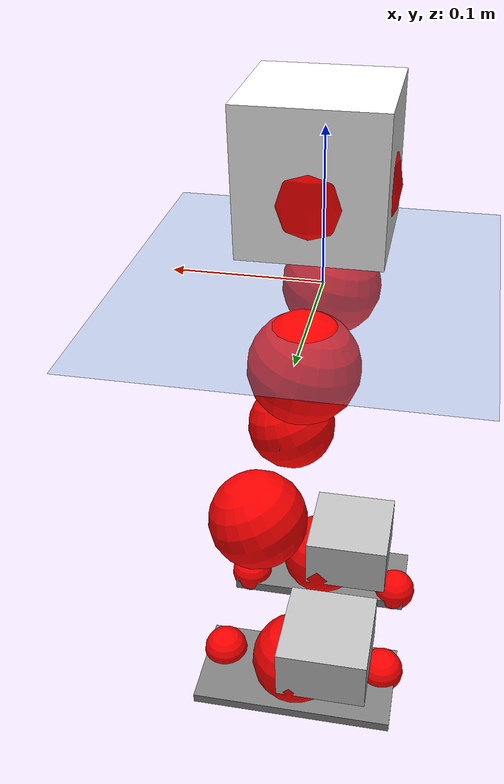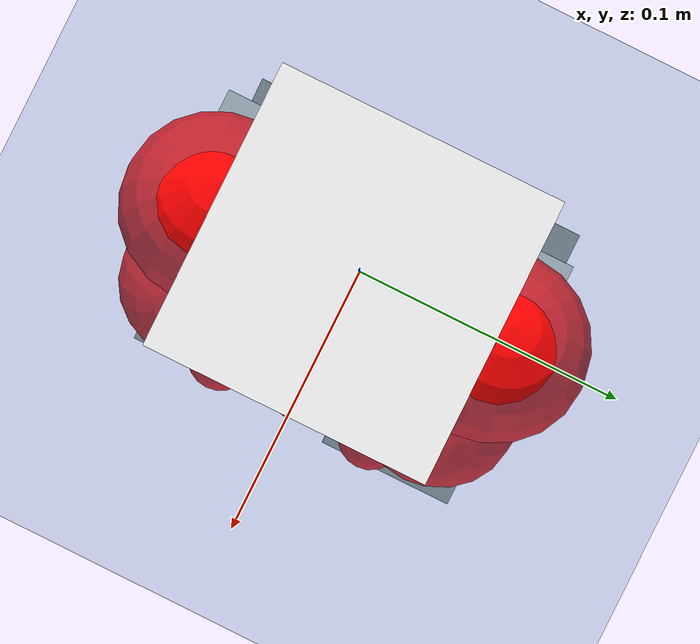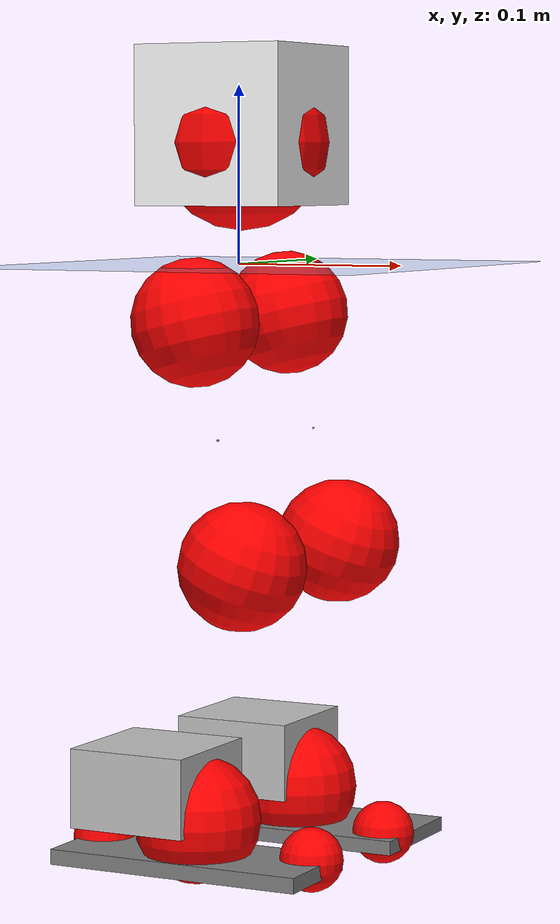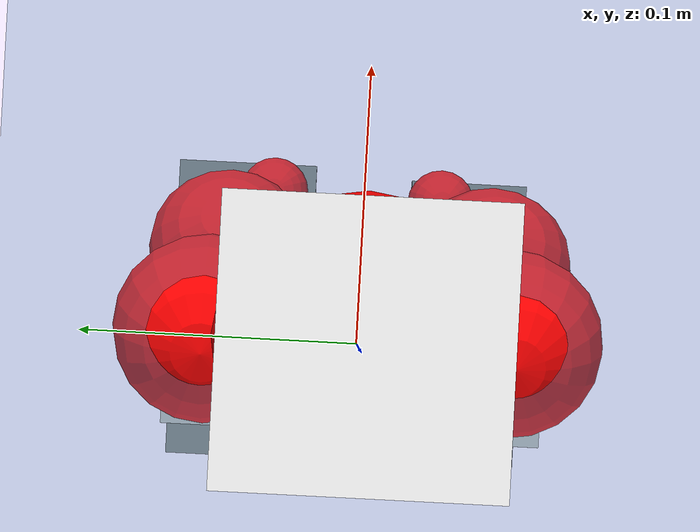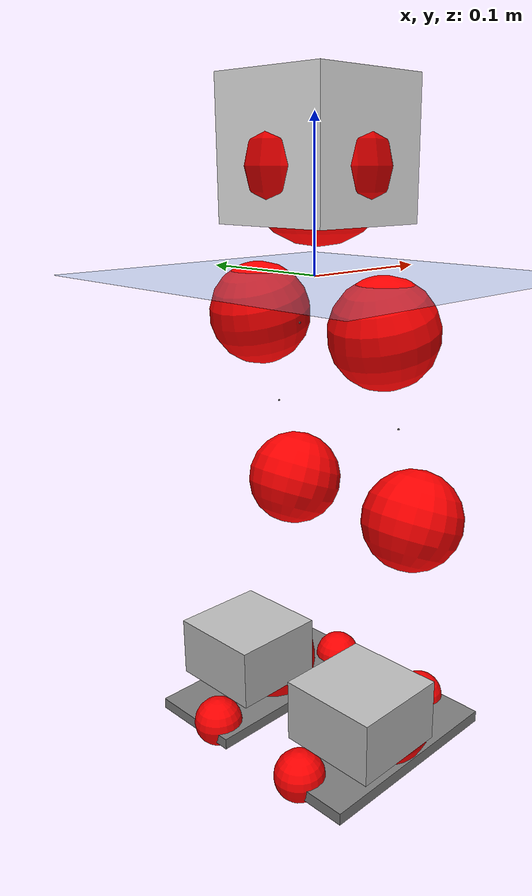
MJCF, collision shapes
<mujoco model="pi_12dof_release_v1">
  <compiler angle="radian" assetdir="assets" balanceinertia="true" inertiafromgeom="false"/>

  <option timestep="0.005" density="1.2" viscosity="2e-05"/>

  <size nkey="1"/>

  <visual>
    <quality shadowsize="8192"/>
    <map shadowclip="0.5"/>
  </visual>

  <default>
    <default class="/">
      <joint armature="0.01" damping="0.01" frictionloss="0.01"/>
      <geom contype="0" conaffinity="0" group="1" solref="-1000 -80"/>
      <site size="0.01 0.005 0.005" group="5"/>
      <general forcelimited="true" biastype="affine" gainprm="20" biasprm="0 -20 -0.5"/>
      <default class="foot">
        <geom size="0.0845 0.036 0.005" type="box" condim="6" group="4" priority="1" friction="0.9 0.2 0.2" solimp="0.015 1 0.005"/>
      </default>
      <default class="reward_collision_sphere">
        <geom group="5" rgba="1 0 0 1"/>
      </default>
    </default>
  </default>

  <asset>
    <texture type="skybox" colorspace="auto" name="//unnamed_texture_0" builtin="gradient" rgb1="0.95 0.95 0.95" rgb2="0.95 0.95 0.95" width="100" height="600"/>
    <texture type="2d" colorspace="auto" name="texplane" builtin="checker" rgb1="0.345 0.575 0.748" rgb2="0.345 0.575 0.748" markrgb="1 1 1" width="512" height="512"/>
    <material name="MatPlane" class="/" texture="texplane" texuniform="true" texrepeat="2 2" specular="0.9"/>
    <mesh name="baselink_1" class="/" file="baselink_1.STL"/>
    <mesh name="r_hip_pitch_link" class="/" file="r_hip_pitch_link.STL"/>
    <mesh name="r_hip_roll_link" class="/" file="r_hip_roll_link.STL"/>
    <mesh name="r_thigh_link" class="/" file="r_thigh_link.STL"/>
    <mesh name="r_calf_link" class="/" file="r_calf_link.STL"/>
    <mesh name="r_ankle_pitch_link" class="/" file="r_ankle_pitch_link.STL"/>
    <mesh name="r_ankle_roll_link" class="/" file="r_ankle_roll_link.STL"/>
    <mesh name="l_hip_pitch_link" class="/" file="l_hip_pitch_link.STL"/>
    <mesh name="l_hip_roll_link" class="/" file="l_hip_roll_link.STL"/>
    <mesh name="l_thigh_link" class="/" file="l_thigh_link.STL"/>
    <mesh name="l_calf_link" class="/" file="l_calf_link.STL"/>
    <mesh name="l_ankle_pitch_link" class="/" file="l_ankle_pitch_link.STL"/>
    <mesh name="l_ankle_roll_link" class="/" file="l_ankle_roll_link.STL"/>
  </asset>

  <worldbody>
    <geom name="floor" class="/" size="100 100 0.125" type="plane" group="0" material="MatPlane"/>
    <light name="toplight_shadow" class="/" pos="0 0 5" dir="0.0990148 0.0990148 -0.990148" type="directional" ambient="0.04 0.04 0.04" diffuse="0.55 0.55 0.55" specular="0.12 0.12 0.12"/>
    <light name="toplight_fill" class="/" pos="0 0 5" dir="0.0990148 0.0990148 -0.990148" type="directional" castshadow="false" ambient="0.04 0.04 0.04" diffuse="0.3 0.3 0.3" specular="0.08 0.08 0.08"/>
    <body name="trunk" pos="0.00255247 -0.000552265 0.00032452" quat="0.999999 0.000734224 -0.000111061 0.000919827">
      <inertial pos="-0.000281544 -0.00134314 0.0388" quat="0.695235 0.0090089 0.00695456 0.718692" mass="1.46866" diaginertia="0.0084278 0.00197281 0.00337001"/>
      <joint name="//unnamed_joint_0" type="free"/>
      <geom name="//unnamed_geom_1" class="/" type="mesh" density="0" rgba="1 1 1 1" mesh="baselink_1"/>
      <geom name="//unnamed_geom_2" class="/" size="0.0445748 0.0445748 0.0445748" pos="0 0 0.0770077" type="box" rgba="1 1 1 1"/>
      <geom name="//unnamed_geom_3" class="reward_collision_sphere" size="0.0490323" pos="0 0 0.0673817"/>
      <site name="imu" class="/" pos="-0.00259137 0.000741215 0.0113233" size="0.00891497"/>
      <camera name="track" class="/" pos="0 -1.47879 0" quat="0.707107 0.707107 0 0" mode="trackcom"/>
      <camera name="ego_camera" class="/" pos="0.0729374 0 0.173267" quat="-0.5 -0.5 0.5 0.5"/>
      <body name="r_hip_pitch_link" pos="-0.000180221 -0.0158736 -0.03179" quat="0.992162 -0.000286186 -0.124957 4.64861e-06">
        <inertial pos="0.000133879 -0.0430989 -0.000206297" quat="-0.02036 0.705854 -0.0269237 0.707553" mass="0.260556" diaginertia="9.64451e-05 2.14408e-05 6.85321e-05"/>
        <joint name="r_hip_pitch_joint" class="/" pos="0 0 0" axis="0.00314358 -0.999985 0.00459388" range="-1.74584 1.24723" armature="0.0092933" damping="0.0223285" frictionloss="0.00953676"/>
        <geom name="//unnamed_geom_4" class="/" type="mesh" density="0" rgba="0.75294 0.75294 0.75294 1" mesh="r_hip_pitch_link"/>
        <geom name="//unnamed_geom_5" class="/" size="0.000445748 0.000445748 0.000445748" type="box" rgba="0.75294 0.75294 0.75294 1"/>
        <body name="r_hip_roll_link" pos="0.000345584 -0.0408675 0.000772337" quat="1 -7.58005e-05 -0.000531023 -0.000757126">
          <inertial pos="0.000321011 -0.00106521 -0.0614067" quat="0.705866 -0.0795984 -0.0825071 0.699006" mass="0.268865" diaginertia="0.000285147 6.08548e-05 0.00010773"/>
          <joint name="r_hip_roll_joint" class="/" pos="0 0 0" axis="-0.999975 0.00705471 0.000967053" stiffness="0.00222585" range="-0.101114 0.471404" armature="0.00923503" damping="0" frictionloss="0.00976483"/>
          <geom name="//unnamed_geom_6" class="/" type="mesh" density="0" rgba="0.75294 0.75294 0.75294 1" mesh="r_hip_roll_link"/>
          <geom name="//unnamed_geom_7" class="/" size="0.000445748 0.000445748 0.000445748" type="box" rgba="0.75294 0.75294 0.75294 1"/>
          <geom name="//unnamed_geom_8" class="reward_collision_sphere" size="0.0356599"/>
          <body name="r_thigh_link" pos="-0.00160076 -0.00163314 -0.0657679" quat="1 0.00014515 -2.91378e-05 -0.000250155">
            <inertial pos="-0.00143302 0.00109162 -0.0446861" quat="0.738887 0.673822 0.00255832 0.0018371" mass="0.0797838" diaginertia="0.000111557 2.18006e-05 4.87604e-05"/>
            <joint name="r_thigh_joint" class="/" pos="0 0 0" axis="0.00235794 0.00131541 -0.999996" range="-0.335346 0.601878" armature="0.00875916" damping="0.0003556" frictionloss="0.00777628"/>
            <geom name="//unnamed_geom_9" class="/" type="mesh" density="0" rgba="0.75294 0.75294 0.75294 1" mesh="r_thigh_link"/>
            <geom name="//unnamed_geom_10" class="/" size="0.000445748 0.000445748 0.000445748" type="box" rgba="0.75294 0.75294 0.75294 1"/>
            <body name="r_calf_link" pos="-0.00156533 -0.00197096 -0.0701915" quat="0.947452 -0.000502049 0.319897 -3.60341e-05">
              <inertial pos="-0.000630303 -0.00281323 -0.0667981" quat="0.999905 -0.0111212 -0.0048328 0.0066218" mass="0.571177" diaginertia="0.00299717 0.000770383 0.000142325"/>
              <joint name="r_calf_joint" class="/" pos="0 0 0" axis="-0.00224762 -0.999974 -0.00682489" range="-1.60035 0.641677" armature="0.00903408" damping="0.00587683" frictionloss="0.00958817"/>
              <geom name="//unnamed_geom_11" class="/" type="mesh" density="0" rgba="0.75294 0.75294 0.75294 1" mesh="r_calf_link"/>
              <geom name="//unnamed_geom_12" class="/" size="0.000445748 0.000445748 0.000445748" type="box" rgba="0.75294 0.75294 0.75294 1"/>
              <geom name="//unnamed_geom_13" class="reward_collision_sphere" size="0.0356599"/>
              <body name="r_ankle_pitch_link" pos="-0.000260719 -0.00189541 -0.135097" quat="0.980068 0.000169681 -0.198661 0.000119762">
                <inertial pos="0.00487218 0.00115342 -0.000689912" quat="0.00501398 0.709019 -0.00387553 0.705161" mass="0.126055" diaginertia="0.000266875 4.97897e-05 0.000101691"/>
                <joint name="r_ankle_pitch_joint" class="/" pos="0 0 0" axis="-0.00838125 -0.99994 0.0070266" range="-1.30731 0.4979" armature="0.00913691" damping="0" frictionloss="0.00904858"/>
                <geom name="//unnamed_geom_14" class="/" type="mesh" density="0" rgba="0.75294 0.75294 0.75294 1" mesh="r_ankle_pitch_link"/>
                <geom name="//unnamed_geom_15" class="/" size="0.0347684 0.0356599 0.0222874" type="box" rgba="0.75294 0.75294 0.75294 1"/>
                <body name="r_ankle_roll_link" pos="0.0735135 0.00147879 0.000838026" quat="1 2.03603e-05 -6.83003e-05 0.000161137">
                  <inertial pos="-0.0229286 0.000746891 -0.0143362" quat="0.553416 0.433064 0.442601 0.557037" mass="0.365358" diaginertia="0.000984489 0.000227511 0.00023015"/>
                  <joint name="r_ankle_roll_joint" class="/" pos="0 0 0" axis="-0.999909 0.0090316 0.00999196" range="-0.197407 0.163321" armature="0.00996618" damping="0.0111452" frictionloss="0.00905623"/>
                  <geom name="//unnamed_geom_16" class="/" type="mesh" density="0" rgba="0.75294 0.75294 0.75294 1" mesh="r_ankle_roll_link"/>
                  <geom name="//unnamed_geom_17" class="/" type="mesh" rgba="0.75294 0.75294 0.75294 1" mesh="r_ankle_roll_link"/>
                  <geom name="right_foot" class="foot" size="0.0756871 0.0305598 0.00432637" pos="-0.0495974 0 -0.0423542"/>
                  <geom name="//unnamed_geom_19" class="reward_collision_sphere" size="0.0356599" pos="-0.0486249 0 -0.0192519"/>
                  <geom name="//unnamed_geom_20" class="reward_collision_sphere" size="0.0178299" pos="0.0145875 0.0147879 -0.0385038"/>
                  <geom name="//unnamed_geom_21" class="reward_collision_sphere" size="0.0178299" pos="-0.1167 0.0147879 -0.0385038"/>
                  <site name="right_foot" class="foot" pos="-0.0495974 0 -0.0423542" size="0.00891497"/>
                </body>
              </body>
            </body>
          </body>
        </body>
      </body>
      <body name="l_hip_pitch_link" pos="-4.31188e-05 0.0169289 -0.032698" quat="0.992214 0.000133223 -0.124542 -1.75835e-05">
        <inertial pos="-6.10492e-06 0.042139 -0.00143125" quat="-0.0420991 0.704377 0.0418399 0.70734" mass="0.281699" diaginertia="0.000111228 2.29941e-05 8.47992e-05"/>
        <joint name="l_hip_pitch_joint" class="/" pos="0 0 0" axis="-0.00817685 0.999918 -0.00988021" range="-1.26619 1.75704" armature="0.00883382" damping="0.00845353" frictionloss="0.00901382"/>
        <geom name="//unnamed_geom_22" class="/" type="mesh" density="0" rgba="0.75294 0.75294 0.75294 1" mesh="l_hip_pitch_link"/>
        <geom name="//unnamed_geom_23" class="/" size="0.000445748 0.000445748 0.000445748" type="box" rgba="0.75294 0.75294 0.75294 1"/>
        <body name="l_hip_roll_link" pos="0.000458008 0.0393917 0.00242921" quat="1 -5.58367e-06 5.94247e-05 -3.97676e-05">
          <inertial pos="-0.00117164 4.61521e-07 -0.0593144" quat="0.698322 -0.0732232 -0.0820413 0.707286" mass="0.280124" diaginertia="0.000287567 6.0287e-05 0.000105978"/>
          <joint name="l_hip_roll_joint" class="/" pos="0 0 0" axis="-0.999994 -0.00355124 -0.000609992" range="-0.502794 0.15044" armature="0.00918743" damping="0.00429745" frictionloss="0.00934225"/>
          <geom name="//unnamed_geom_24" class="/" type="mesh" density="0" rgba="0.75294 0.75294 0.75294 1" mesh="l_hip_roll_link"/>
          <geom name="//unnamed_geom_25" class="/" size="0.000445748 0.000445748 0.000445748" type="box" rgba="0.75294 0.75294 0.75294 1"/>
          <geom name="//unnamed_geom_26" class="reward_collision_sphere" size="0.0356599"/>
          <body name="l_thigh_link" pos="9.60988e-05 2.76871e-05 -0.0689138" quat="1 6.08358e-05 -9.38783e-05 -0.000240019">
            <inertial pos="0.00134559 0.0010962 -0.0458982" quat="0.675376 0.737473 -0.000153925 4.92274e-06" mass="0.0788008" diaginertia="0.000107145 2.07942e-05 4.57739e-05"/>
            <joint name="l_thigh_joint" class="/" pos="0 0 0" axis="0.0015205 0.00290502 -0.999995" range="-0.594594 0.319869" armature="0.00886461" damping="0" frictionloss="0.00891655"/>
            <geom name="//unnamed_geom_27" class="/" type="mesh" density="0" rgba="0.75294 0.75294 0.75294 1" mesh="l_thigh_link"/>
            <geom name="//unnamed_geom_28" class="/" size="0.000445748 0.000445748 0.000445748" type="box" rgba="0.75294 0.75294 0.75294 1"/>
            <body name="l_calf_link" pos="-0.000646217 0.000371182 -0.0668975" quat="0.947758 -0.0011943 0.318988 0.000161101">
              <inertial pos="0.00285519 0.0033512 -0.0699141" quat="1 0.000746684 -0.000198669 -0.000450781" mass="0.577258" diaginertia="0.00307837 0.000773186 0.000143763"/>
              <joint name="l_calf_joint" class="/" pos="0 0 0" axis="-0.000143632 1 -0.000674698" stiffness="0.00150243" range="-0.649114 1.64536" armature="0.00849344" damping="0.00864793" frictionloss="0.008026"/>
              <geom name="//unnamed_geom_29" class="/" type="mesh" density="0" rgba="0.75294 0.75294 0.75294 1" mesh="l_calf_link"/>
              <geom name="//unnamed_geom_30" class="/" size="0.000445748 0.000445748 0.000445748" type="box" rgba="0.75294 0.75294 0.75294 1"/>
              <geom name="//unnamed_geom_31" class="reward_collision_sphere" size="0.0356599"/>
              <body name="l_ankle_pitch_link" pos="0.00141806 0.00027836 -0.137199" quat="0.980058 -7.06739e-05 -0.198713 8.88077e-05">
                <inertial pos="0.00497083 -0.000763833 0.000103668" quat="-0.0031606 0.70614 0.00226731 0.708061" mass="0.121481" diaginertia="0.000268769 4.95363e-05 9.91347e-05"/>
                <joint name="l_ankle_pitch_joint" class="/" pos="0 0 0" axis="-0.0002727 0.999998 -0.00171187" range="-0.505673 1.30978" armature="0.0089854" damping="0.0115404" frictionloss="0.00868446"/>
                <geom name="//unnamed_geom_32" class="/" type="mesh" density="0" rgba="0.75294 0.75294 0.75294 1" mesh="l_ankle_pitch_link"/>
                <geom name="//unnamed_geom_33" class="/" size="0.0347684 0.0356599 0.0222874" type="box" rgba="0.75294 0.75294 0.75294 1"/>
                <body name="l_ankle_roll_link" pos="0.0731777 0.000752043 -0.000317341" quat="1 -3.78192e-06 9.82815e-05 0.000173556">
                  <inertial pos="-0.0254613 9.88789e-05 -0.0142147" quat="0.56004 0.430428 0.433723 0.559439" mass="0.363959" diaginertia="0.000971212 0.000227335 0.00023882"/>
                  <joint name="l_ankle_roll_joint" class="/" pos="0 0 0" axis="-0.999933 0.00288851 -0.0111829" range="-0.157344 0.144838" armature="0.0093305" damping="0.0156803" frictionloss="0.00924227"/>
                  <geom name="//unnamed_geom_34" class="/" type="mesh" density="0" rgba="0.75294 0.75294 0.75294 1" mesh="l_ankle_roll_link"/>
                  <geom name="//unnamed_geom_35" class="/" type="mesh" rgba="0.75294 0.75294 0.75294 1" mesh="l_ankle_roll_link"/>
                  <geom name="left_foot" class="foot" size="0.0785065 0.0366375 0.00405779" pos="-0.0495974 0 -0.0423542"/>
                  <geom name="//unnamed_geom_37" class="reward_collision_sphere" size="0.0356599" pos="-0.0486249 0 -0.0192519"/>
                  <geom name="//unnamed_geom_38" class="reward_collision_sphere" size="0.0178299" pos="0.0145875 -0.0147879 -0.0385038"/>
                  <geom name="//unnamed_geom_39" class="reward_collision_sphere" size="0.0178299" pos="-0.1167 -0.0147879 -0.0385038"/>
                  <site name="left_foot" class="foot" pos="-0.0495974 0 -0.0423542" size="0.00891497"/>
                </body>
              </body>
            </body>
          </body>
        </body>
      </body>
    </body>
  </worldbody>

  <contact>
    <pair class="/" geom1="floor" geom2="right_foot" name="//unnamed_contact_1"/>
    <pair class="/" geom1="floor" geom2="left_foot" name="//unnamed_contact_0"/>
  </contact>

  <actuator>
    <general name="r_hip_pitch_joint" class="/" joint="r_hip_pitch_joint" forcerange="-18.8268 18.8268" gainprm="18.0805" biasprm="0 -18.0805 -0.444758"/>
    <general name="r_hip_roll_joint" class="/" joint="r_hip_roll_joint" forcerange="-19.1084 19.1084" gainprm="18.0805" biasprm="0 -18.0805 -0.444758"/>
    <general name="r_thigh_joint" class="/" joint="r_thigh_joint" forcerange="-18.927 18.927" gainprm="18.0805" biasprm="0 -18.0805 -0.444758"/>
    <general name="r_calf_joint" class="/" joint="r_calf_joint" forcerange="-20.4798 20.4798" gainprm="18.0805" biasprm="0 -18.0805 -0.444758"/>
    <general name="r_ankle_pitch_joint" class="/" joint="r_ankle_pitch_joint" forcerange="-18.2877 18.2877" gainprm="18.0805" biasprm="0 -18.0805 -0.444758"/>
    <general name="r_ankle_roll_joint" class="/" joint="r_ankle_roll_joint" forcerange="-17.1054 17.1054" gainprm="18.0805" biasprm="0 -18.0805 -0.444758"/>
    <general name="l_hip_pitch_joint" class="/" joint="l_hip_pitch_joint" forcerange="-18.8957 18.8957" gainprm="18.0805" biasprm="0 -18.0805 -0.444758"/>
    <general name="l_hip_roll_joint" class="/" joint="l_hip_roll_joint" forcerange="-18.6927 18.6927" gainprm="18.0805" biasprm="0 -18.0805 -0.444758"/>
    <general name="l_thigh_joint" class="/" joint="l_thigh_joint" forcerange="-18.6194 18.6194" gainprm="18.0805" biasprm="0 -18.0805 -0.444758"/>
    <general name="l_calf_joint" class="/" joint="l_calf_joint" forcerange="-18.5433 18.5433" gainprm="18.0805" biasprm="0 -18.0805 -0.444758"/>
    <general name="l_ankle_pitch_joint" class="/" joint="l_ankle_pitch_joint" forcerange="-18.6935 18.6935" gainprm="18.0805" biasprm="0 -18.0805 -0.444758"/>
    <general name="l_ankle_roll_joint" class="/" joint="l_ankle_roll_joint" forcerange="-18.9691 18.9691" gainprm="18.0805" biasprm="0 -18.0805 -0.444758"/>
  </actuator>

  <sensor>
    <gyro site="imu" name="imu_angular_velocity"/>
    <velocimeter site="imu" name="imu_linear_velocity"/>
    <framelinvel objtype="site" objname="left_foot" name="left_foot_global_linear_velocity"/>
    <framelinvel objtype="site" objname="right_foot" name="right_foot_global_linear_velocity"/>
  </sensor>

  <keyframe>
    <key name="home" qpos="0 0 0.291 1 0 0 0 0.4 0 0 -0.8 0.4 0 -0.4 0 0 0.8 -0.4 0"/>
  </keyframe>
</mujoco>
